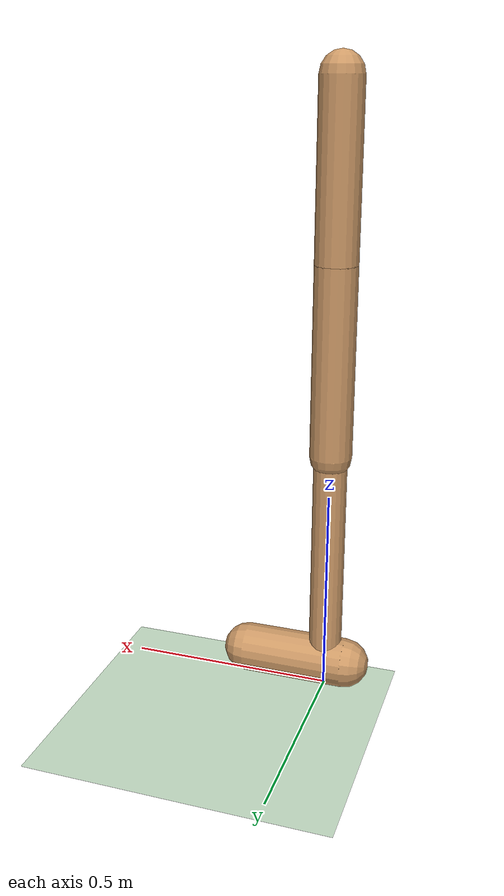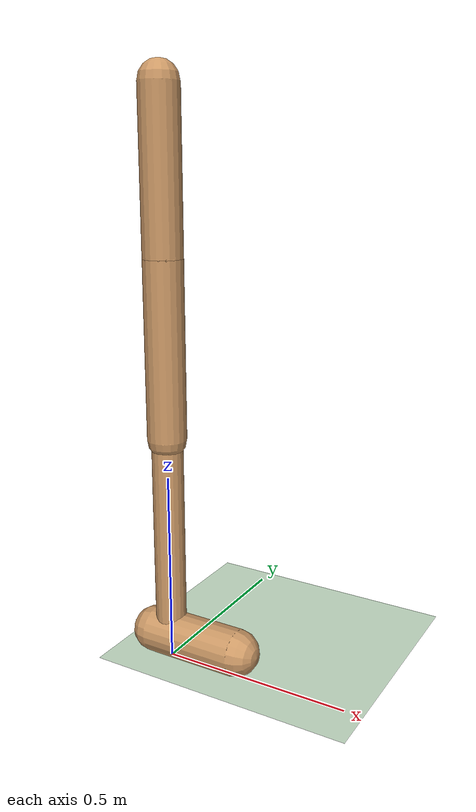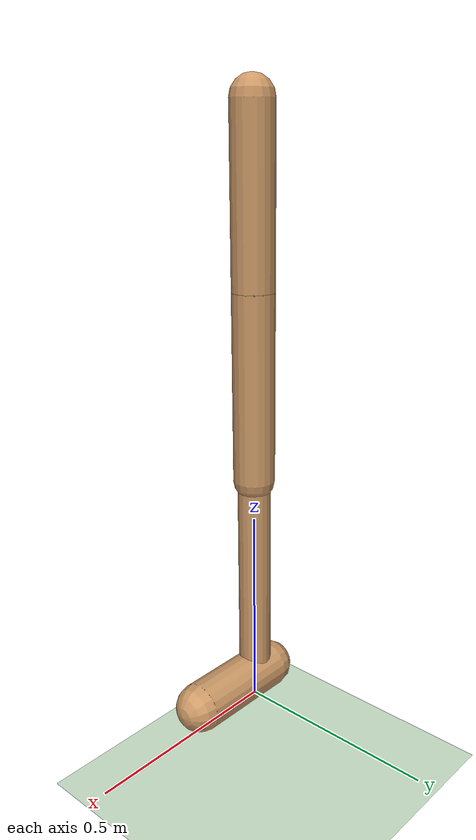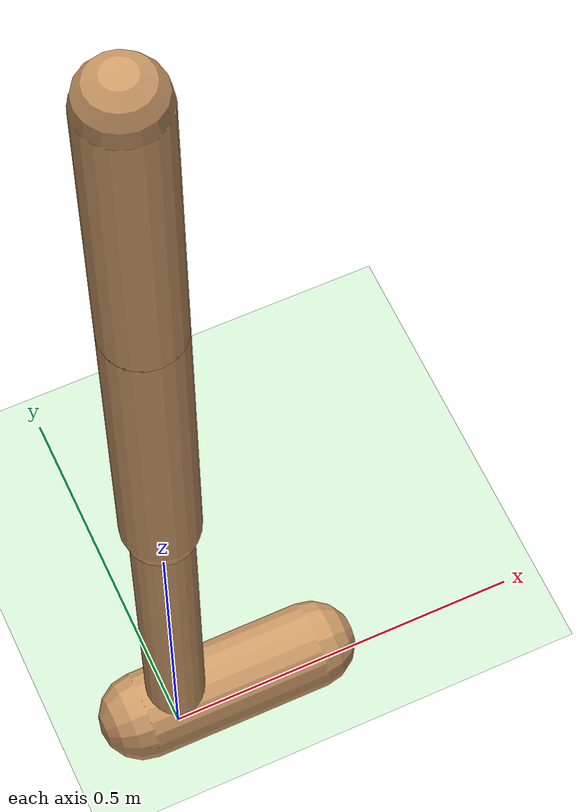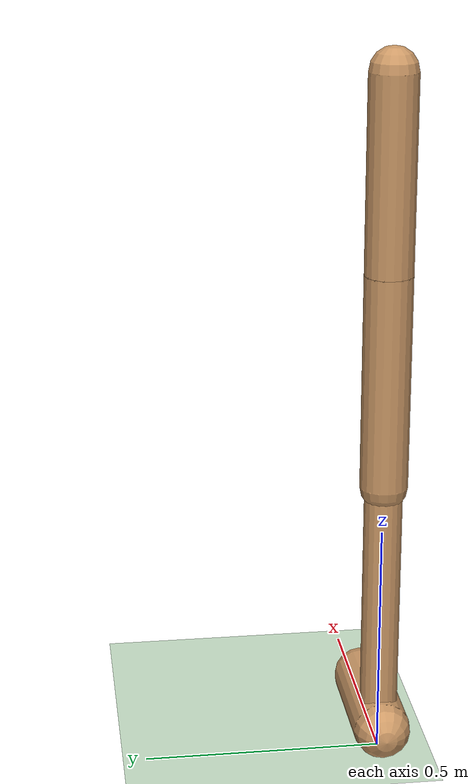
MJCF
<?xml version="1.0" encoding="utf-8"?>
<mujoco model="biped">
  <compiler angle="degree" inertiafromgeom="true" />
  <option integrator="RK4" timestep="0.002" />
  <visual>
    <global offwidth="1920" offheight="1080" />
  </visual>
  <default>
    <joint armature="0.01" damping="0.1" limited="true" />
    <geom conaffinity="0" condim="3" contype="1" density="1000" friction="0.9 0.1 0.1" rgba="0.8 0.6 0.4 1" />
  </default>
  <asset>
    <texture type="skybox" builtin="gradient" rgb1=".4 .5 .6" rgb2="0 0 0" width="100" height="100" />
    <texture builtin="checker" height="100" name="texplane" rgb1="0 0 0" rgb2="0.8 0.8 0.8" type="2d" width="100" />
    <material name="MatPlane" reflectance="0.5" shininess="1" specular="1" texrepeat="60 60" texture="texplane" />
  </asset>
  <worldbody>
    <light cutoff="100" diffuse="1 1 1" dir="0 0 -1.3" directional="true" exponent="1" pos="0 0 1.3" specular=".1 .1 .1" />
    <geom conaffinity="1" condim="3" name="floor" pos="0 0 0" rgba="0.8 0.9 0.8 1" size="100 100 100" type="plane" material="MatPlane" />
    <body name="torso" pos="0.0000 0.0000 1.2550">
      <camera name="track" mode="trackcom" pos="0 -3 -0.25" xyaxes="1 0 0 0 0 1" />
      <joint armature="0" axis="1 0 0" damping="0" limited="false" name="rootx" pos="0 0 0" stiffness="0" type="slide" />
      <joint armature="0" axis="0 0 1" damping="0" limited="false" name="rootz" pos="0 0 0" ref="1.2550" stiffness="0" type="slide" />
      <joint armature="0" axis="0 1 0" damping="0" limited="false" name="rooty" pos="0 0 0" stiffness="0" type="hinge" />
      <geom name="torso_geom" type="capsule" size="0.0500" rgba="0.8 0.6 0.4 1" friction="0.9" fromto="0.0000 0.0000 -0.2000 0.0000 0.0000 0.2000" />
      <body name="thigh_r" pos="0.0000 0.0000 -0.2000">
        <joint axis="0 -1 0" name="thigh_r_joint" pos="0 0 0" range="-150 0" type="hinge" />
        <geom name="thigh_r_geom" type="capsule" size="0.0500" friction="0.9" rgba="0.8 0.6 0.4 1" fromto="0.0000 0.0000 0.0000 0.0000 0.0000 -0.4500" />
        <body name="shin_r" pos="0.0000 0.0000 -0.4500">
          <joint axis="0 -1 0" name="shin_r_joint" pos="0 0 0" range="-150 0" type="hinge" />
          <geom name="shin_r_geom" type="capsule" size="0.0400" friction="0.9" rgba="0.8 0.6 0.4 1" fromto="0.0000 0.0000 0.0000 0.0000 0.0000 -0.5000" />
          <body name="foot_r" pos="-0.0500 0.0000 -0.5400">
            <joint axis="0 -1 0" name="foot_r_joint" pos="0 0 0" range="-45 45" type="hinge" />
            <geom name="foot_r_geom" type="capsule" size="0.0600" friction="1.9" rgba="0.8 0.6 0.4 1" fromto="0.0000 0.0000 0.0000 0.2500 0.0000 0.0000" />
          </body>
        </body>
      </body>
      <body name="thigh_l" pos="0.0000 0.0000 -0.2000">
        <joint axis="0 -1 0" name="thigh_l_joint" pos="0 0 0" range="-150 0" type="hinge" />
        <geom name="thigh_l_geom" type="capsule" size="0.0500" friction="0.9" rgba="0.7 0.3 0.6 1" fromto="0.0000 0.0000 0.0000 0.0000 0.0000 -0.4500" />
        <body name="shin_l" pos="0.0000 0.0000 -0.4500">
          <joint axis="0 -1 0" name="shin_l_joint" pos="0 0 0" range="-150 0" type="hinge" />
          <geom name="shin_l_geom" type="capsule" size="0.0400" friction="0.9" rgba="0.7 0.3 0.6 1" fromto="0.0000 0.0000 0.0000 0.0000 0.0000 -0.5000" />
          <body name="foot_l" pos="-0.0500 0.0000 -0.5400">
            <joint axis="0 -1 0" name="foot_l_joint" pos="0 0 0" range="-45 45" type="hinge" />
            <geom name="foot_l_geom" type="capsule" size="0.0600" friction="1.9" rgba="0.7 0.3 0.6 1" fromto="0.0000 0.0000 0.0000 0.2500 0.0000 0.0000" />
          </body>
        </body>
      </body>
    </body>
  </worldbody>
  <actuator>
    <motor ctrllimited="true" ctrlrange="-1.0 1.0" gear="104.7" joint="thigh_r_joint" />
    <motor ctrllimited="true" ctrlrange="-1.0 1.0" gear="104.7" joint="shin_r_joint" />
    <motor ctrllimited="true" ctrlrange="-1.0 1.0" gear="104.7" joint="foot_r_joint" />
    <motor ctrllimited="true" ctrlrange="-1.0 1.0" gear="104.7" joint="thigh_l_joint" />
    <motor ctrllimited="true" ctrlrange="-1.0 1.0" gear="104.7" joint="shin_l_joint" />
    <motor ctrllimited="true" ctrlrange="-1.0 1.0" gear="104.7" joint="foot_l_joint" />
  </actuator>
</mujoco>
